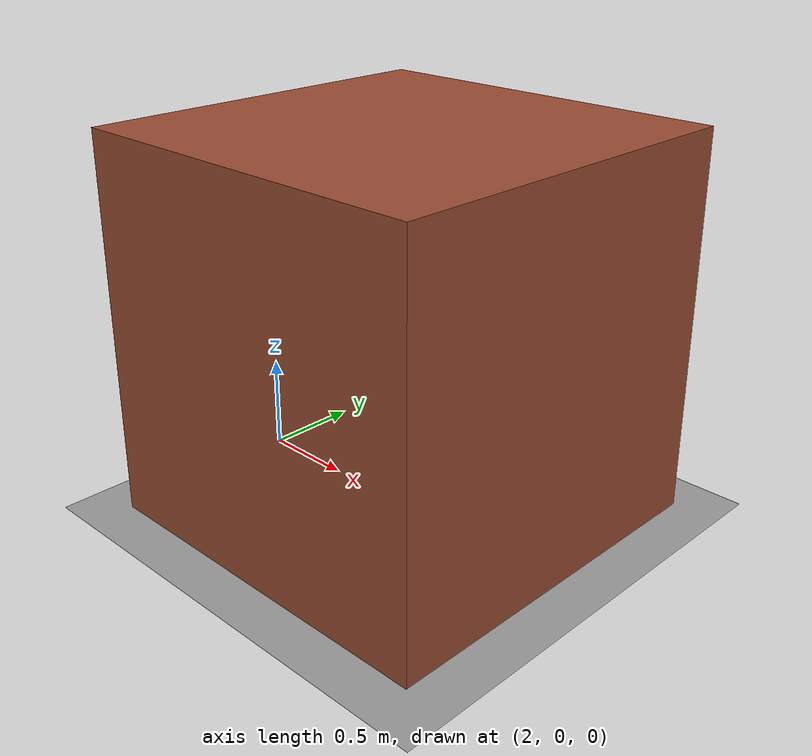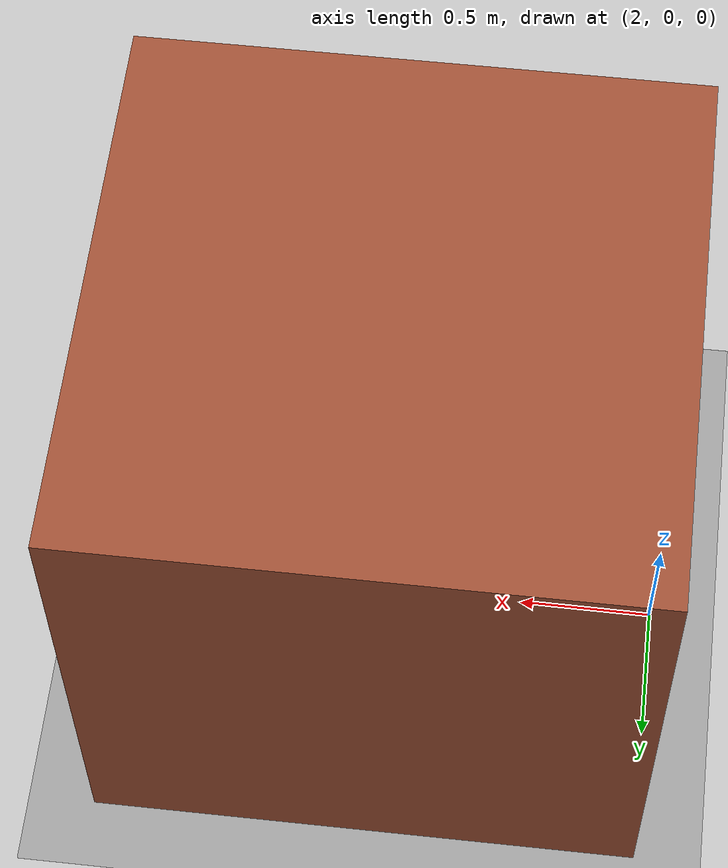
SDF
<?xml version="1.0"?>
<sdf version="1.9">
  <world name="warehouse_minimal">

    <!-- Physics -->
    <physics name="1ms" type="ode">
      <max_step_size>0.004</max_step_size>
      <real_time_factor>1.0</real_time_factor>
      <real_time_update_rate>250</real_time_update_rate>
    </physics>

    <!-- PX4 Required -->
    <gravity>0 0 -9.8</gravity>
    <magnetic_field>6e-06 2.3e-05 -4.2e-05</magnetic_field>
    <atmosphere type="adiabatic"/>

    <!-- Scene -->
    <scene>
      <ambient>0.4 0.4 0.4 1</ambient>
      <grid>false</grid>
      <shadows>true</shadows>
    </scene>

    <!-- Lighting -->
    <light type="directional" name="sun">
      <cast_shadows>true</cast_shadows>
      <pose>0 0 10 0 0 0</pose>
      <diffuse>0.8 0.8 0.8 1</diffuse>
      <specular>0.2 0.2 0.2 1</specular>
      <direction>-0.5 0.1 -0.9</direction>
    </light>

    <!-- Ground plane -->
    <model name="ground_plane">
      <static>true</static>
      <link name="link">
        <collision name="collision">
          <geometry>
            <plane>
              <normal>0 0 1</normal>
              <size>20 20</size>
            </plane>
          </geometry>
        </collision>
        <visual name="visual">
          <geometry>
            <plane>
              <normal>0 0 1</normal>
              <size>20 20</size>
            </plane>
          </geometry>
          <material>
            <ambient>0.5 0.5 0.5 1</ambient>
            <diffuse>0.6 0.6 0.6 1</diffuse>
          </material>
        </visual>
      </link>
    </model>

    <!-- ONE test box -->
    <model name="test_box">
      <static>true</static>
      <pose>3 0 1 0 0 0</pose>
      <link name="link">
        <collision name="collision">
          <geometry>
            <box><size>2 2 2</size></box>
          </geometry>
        </collision>
        <visual name="visual">
          <geometry>
            <box><size>2 2 2</size></box>
          </geometry>
          <material>
            <ambient>0.6 0.3 0.2 1</ambient>
          </material>
        </visual>
      </link>
    </model>

  </world>
</sdf>
